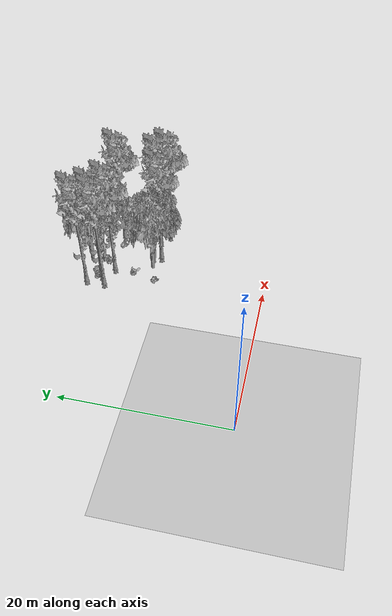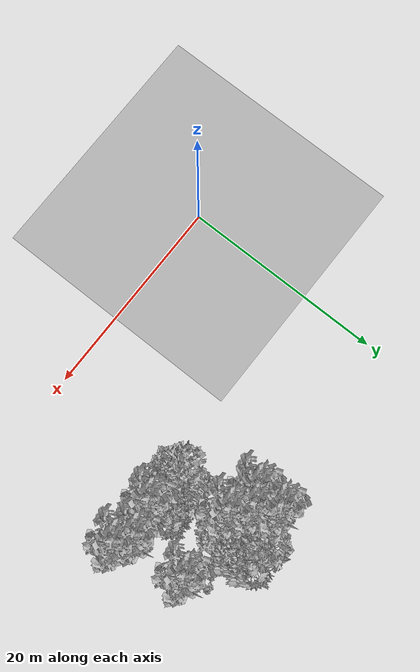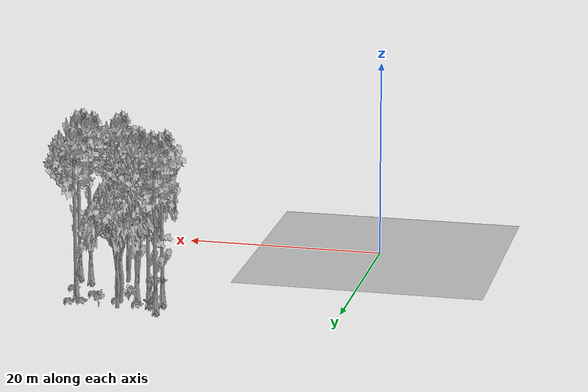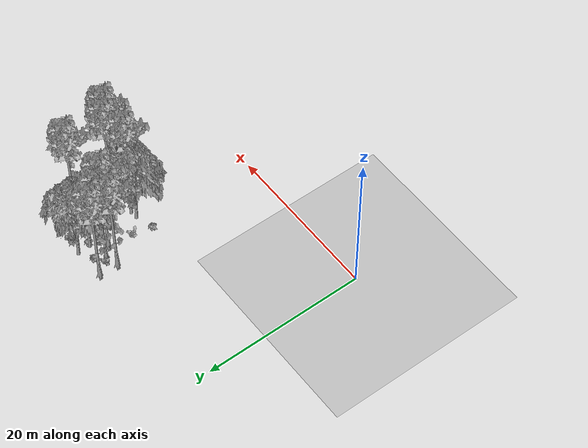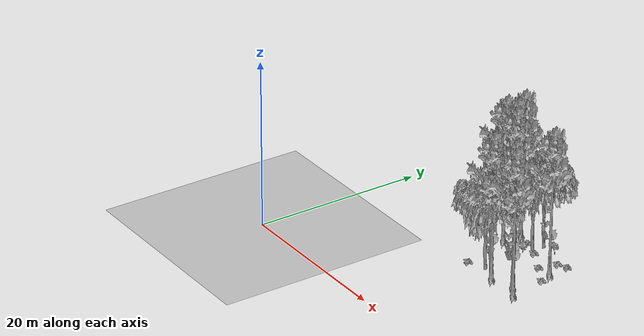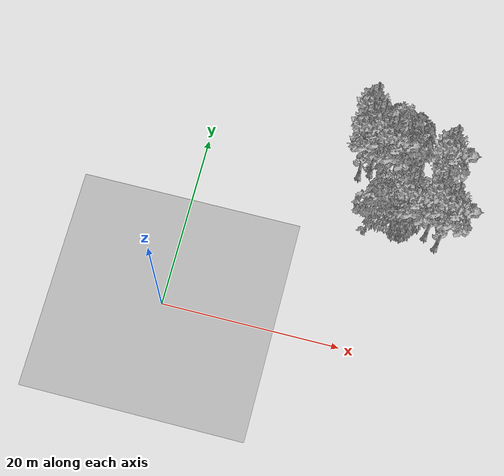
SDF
<sdf version="1.7">
 <world name="default">
  <model name="ground_plane">
   <static>1</static>
   <link name="link">
    <collision name="collision">
     <pose>-50 0 0 0 -0 0</pose>
     <geometry><plane><normal>0 0 1</normal><size>80 80</size></plane></geometry>
     <surface><contact><ode><min_depth>0.01</min_depth><max_vel>0</max_vel></ode></contact></surface>
    </collision>
    <visual name="grass">
     <cast_shadows>0</cast_shadows>
     <geometry>
      <mesh>
       <scale>0.46714285714285714 0.46714285714285714 0.1</scale>
       <uri>file://grass_plane/meshes/grass_plane.dae</uri>
      </mesh>
     </geometry>
    </visual>
   </link>
  </model>
  <model name="Tree 81">
   <static>1</static>
   <pose>27.825492274442666 13.792564507645409 0 1.57079 -0 0</pose>
   <link name="link">
    <collision name="collision">
     <geometry><mesh><scale>3.5 5 3.5</scale><uri>model://tree_9/meshes/tree_9.obj</uri></mesh></geometry>
    </collision>
    <visual name="visual">
     <geometry><mesh><scale>3.5 5 3.5</scale><uri>model://tree_9/meshes/tree_9.obj</uri></mesh></geometry>
    </visual>
   </link>
  </model>
  <model name="Tree 201">
   <static>1</static>
   <pose>17.6155362397091 19.97150024033938 0 1.57079 -0 0</pose>
   <link name="link">
    <collision name="collision">
     <geometry><mesh><scale>3.5 5 3.5</scale><uri>model://tree_9/meshes/tree_9.obj</uri></mesh></geometry>
    </collision>
    <visual name="visual">
     <geometry><mesh><scale>3.5 5 3.5</scale><uri>model://tree_9/meshes/tree_9.obj</uri></mesh></geometry>
    </visual>
   </link>
  </model>
  <model name="Tree 272">
   <static>1</static>
   <pose>21.31432841173236 22.63045035678634 0 1.57079 -0 0</pose>
   <link name="link">
    <collision name="collision">
     <geometry><mesh><scale>3.5 5 3.5</scale><uri>model://tree_2/meshes/tree_2.obj</uri></mesh></geometry>
    </collision>
    <visual name="visual">
     <geometry><mesh><scale>3.5 5 3.5</scale><uri>model://tree_2/meshes/tree_2.obj</uri></mesh></geometry>
    </visual>
   </link>
  </model>
  <model name="Tree 290">
   <static>1</static>
   <pose>26.43378960815322 19.694650475262705 0 1.57079 -0 0</pose>
   <link name="link">
    <collision name="collision">
     <geometry><mesh><scale>3.5 5 3.5</scale><uri>model://tree_9/meshes/tree_9.obj</uri></mesh></geometry>
    </collision>
    <visual name="visual">
     <geometry><mesh><scale>3.5 5 3.5</scale><uri>model://tree_9/meshes/tree_9.obj</uri></mesh></geometry>
    </visual>
   </link>
  </model>
  <model name="Tree 373">
   <static>1</static>
   <pose>21.5555188132942 14.602361237286644 0 1.57079 -0 0</pose>
   <link name="link">
    <collision name="collision">
     <geometry><mesh><scale>3.5 5 3.5</scale><uri>model://tree_2/meshes/tree_2.obj</uri></mesh></geometry>
    </collision>
    <visual name="visual">
     <geometry><mesh><scale>3.5 5 3.5</scale><uri>model://tree_2/meshes/tree_2.obj</uri></mesh></geometry>
    </visual>
   </link>
  </model>
  <model name="Tree 410">
   <static>1</static>
   <pose>20.381674593219856 19.325352890547705 0 1.57079 -0 0</pose>
   <link name="link">
    <collision name="collision">
     <geometry><mesh><scale>3.5 5 3.5</scale><uri>model://tree_9/meshes/tree_9.obj</uri></mesh></geometry>
    </collision>
    <visual name="visual">
     <geometry><mesh><scale>3.5 5 3.5</scale><uri>model://tree_9/meshes/tree_9.obj</uri></mesh></geometry>
    </visual>
   </link>
  </model>
  <model name="Tree 477">
   <static>1</static>
   <pose>17.670079113250267 22.307950847103292 0 1.57079 -0 0</pose>
   <link name="link">
    <collision name="collision">
     <geometry><mesh><scale>3.5 5 3.5</scale><uri>model://tree_9/meshes/tree_9.obj</uri></mesh></geometry>
    </collision>
    <visual name="visual">
     <geometry><mesh><scale>3.5 5 3.5</scale><uri>model://tree_9/meshes/tree_9.obj</uri></mesh></geometry>
    </visual>
   </link>
  </model>
  <model name="Tree 525">
   <static>1</static>
   <pose>23.6677606279358 13.97105103651262 0 1.57079 -0 0</pose>
   <link name="link">
    <collision name="collision">
     <geometry><mesh><scale>3.5 5 3.5</scale><uri>model://tree_9/meshes/tree_9.obj</uri></mesh></geometry>
    </collision>
    <visual name="visual">
     <geometry><mesh><scale>3.5 5 3.5</scale><uri>model://tree_9/meshes/tree_9.obj</uri></mesh></geometry>
    </visual>
   </link>
  </model>
  <model name="Tree 542">
   <static>1</static>
   <pose>18.820318354538294 20.622194371102992 0 1.57079 -0 0</pose>
   <link name="link">
    <collision name="collision">
     <geometry><mesh><scale>3.5 5 3.5</scale><uri>model://tree_9/meshes/tree_9.obj</uri></mesh></geometry>
    </collision>
    <visual name="visual">
     <geometry><mesh><scale>3.5 5 3.5</scale><uri>model://tree_9/meshes/tree_9.obj</uri></mesh></geometry>
    </visual>
   </link>
  </model>
  <model name="Tree 588">
   <static>1</static>
   <pose>21.416611418918663 21.045406055013515 0 1.57079 -0 0</pose>
   <link name="link">
    <collision name="collision">
     <geometry><mesh><scale>3.5 5 3.5</scale><uri>model://tree_2/meshes/tree_2.obj</uri></mesh></geometry>
    </collision>
    <visual name="visual">
     <geometry><mesh><scale>3.5 5 3.5</scale><uri>model://tree_2/meshes/tree_2.obj</uri></mesh></geometry>
    </visual>
   </link>
  </model>
  <model name="Tree 625">
   <static>1</static>
   <pose>26.43177708708076 14.741824622773237 0 1.57079 -0 0</pose>
   <link name="link">
    <collision name="collision">
     <geometry><mesh><scale>3.5 5 3.5</scale><uri>model://tree_9/meshes/tree_9.obj</uri></mesh></geometry>
    </collision>
    <visual name="visual">
     <geometry><mesh><scale>3.5 5 3.5</scale><uri>model://tree_9/meshes/tree_9.obj</uri></mesh></geometry>
    </visual>
   </link>
  </model>
  <model name="Tree 627">
   <static>1</static>
   <pose>22.482801090604028 14.682043763035153 0 1.57079 -0 0</pose>
   <link name="link">
    <collision name="collision">
     <geometry><mesh><scale>3.5 5 3.5</scale><uri>model://tree_2/meshes/tree_2.obj</uri></mesh></geometry>
    </collision>
    <visual name="visual">
     <geometry><mesh><scale>3.5 5 3.5</scale><uri>model://tree_2/meshes/tree_2.obj</uri></mesh></geometry>
    </visual>
   </link>
  </model>
  <model name="Bush 106">
   <static>1</static>
   <pose>19.439741978996942 13.864990455739544 0 1.57079 -0 0</pose>
   <link name="link">
    <collision name="collision">
     <geometry><mesh><scale>2 2 2</scale><uri>model://bush_2/meshes/bush_2.obj</uri></mesh></geometry>
     <surface><contact><collide_without_contact>false</collide_without_contact></contact></surface>
    </collision>
    <visual name="visual">
     <geometry><mesh><scale>2 2 2</scale><uri>model://bush_2/meshes/bush_2.obj</uri></mesh></geometry>
    </visual>
   </link>
  </model>
  <model name="Bush 157">
   <static>1</static>
   <pose>21.97171549794131 20.875434700968768 0 1.57079 -0 0</pose>
   <link name="link">
    <collision name="collision">
     <geometry><mesh><scale>2 2 2</scale><uri>model://bush_2/meshes/bush_2.obj</uri></mesh></geometry>
     <surface><contact><collide_without_contact>false</collide_without_contact></contact></surface>
    </collision>
    <visual name="visual">
     <geometry><mesh><scale>2 2 2</scale><uri>model://bush_2/meshes/bush_2.obj</uri></mesh></geometry>
    </visual>
   </link>
  </model>
  <model name="Bush 342">
   <static>1</static>
   <pose>27.24241700857273 17.97023509243143 0 1.57079 -0 0</pose>
   <link name="link">
    <collision name="collision">
     <geometry><mesh><scale>2 2 2</scale><uri>model://bush_2/meshes/bush_2.obj</uri></mesh></geometry>
     <surface><contact><collide_without_contact>false</collide_without_contact></contact></surface>
    </collision>
    <visual name="visual">
     <geometry><mesh><scale>2 2 2</scale><uri>model://bush_2/meshes/bush_2.obj</uri></mesh></geometry>
    </visual>
   </link>
  </model>
  <model name="Bush 450">
   <static>1</static>
   <pose>20.986924597037387 20.13322935036306 0 1.57079 -0 0</pose>
   <link name="link">
    <collision name="collision">
     <geometry><mesh><scale>2 2 2</scale><uri>model://bush_0/meshes/bush_0.obj</uri></mesh></geometry>
     <surface><contact><collide_without_contact>false</collide_without_contact></contact></surface>
    </collision>
    <visual name="visual">
     <geometry><mesh><scale>2 2 2</scale><uri>model://bush_0/meshes/bush_0.obj</uri></mesh></geometry>
    </visual>
   </link>
  </model>
  <model name="Bush 459">
   <static>1</static>
   <pose>23.28171528389631 22.75225874380402 0 1.57079 -0 0</pose>
   <link name="link">
    <collision name="collision">
     <geometry><mesh><scale>2 2 2</scale><uri>model://bush_5/meshes/bush_5.obj</uri></mesh></geometry>
     <surface><contact><collide_without_contact>false</collide_without_contact></contact></surface>
    </collision>
    <visual name="visual">
     <geometry><mesh><scale>2 2 2</scale><uri>model://bush_5/meshes/bush_5.obj</uri></mesh></geometry>
    </visual>
   </link>
  </model>
  <model name="Bush 496">
   <static>1</static>
   <pose>25.34825099550882 21.54462207225653 0 1.57079 -0 0</pose>
   <link name="link">
    <collision name="collision">
     <geometry><mesh><scale>2 2 2</scale><uri>model://bush_2/meshes/bush_2.obj</uri></mesh></geometry>
     <surface><contact><collide_without_contact>false</collide_without_contact></contact></surface>
    </collision>
    <visual name="visual">
     <geometry><mesh><scale>2 2 2</scale><uri>model://bush_2/meshes/bush_2.obj</uri></mesh></geometry>
    </visual>
   </link>
  </model>
  <model name="Bush 517">
   <static>1</static>
   <pose>19.679255681739484 16.572849008065738 0 1.57079 -0 0</pose>
   <link name="link">
    <collision name="collision">
     <geometry><mesh><scale>2 2 2</scale><uri>model://bush_0/meshes/bush_0.obj</uri></mesh></geometry>
     <surface><contact><collide_without_contact>false</collide_without_contact></contact></surface>
    </collision>
    <visual name="visual">
     <geometry><mesh><scale>2 2 2</scale><uri>model://bush_0/meshes/bush_0.obj</uri></mesh></geometry>
    </visual>
   </link>
  </model>
  <model name="Bush 597">
   <static>1</static>
   <pose>24.77736339730844 19.389154055066584 0 1.57079 -0 0</pose>
   <link name="link">
    <collision name="collision">
     <geometry><mesh><scale>2 2 2</scale><uri>model://bush_2/meshes/bush_2.obj</uri></mesh></geometry>
     <surface><contact><collide_without_contact>false</collide_without_contact></contact></surface>
    </collision>
    <visual name="visual">
     <geometry><mesh><scale>2 2 2</scale><uri>model://bush_2/meshes/bush_2.obj</uri></mesh></geometry>
    </visual>
   </link>
  </model>
  <model name="Bush 602">
   <static>1</static>
   <pose>26.472821916353354 21.964467122951973 0 1.57079 -0 0</pose>
   <link name="link">
    <collision name="collision">
     <geometry><mesh><scale>2 2 2</scale><uri>model://bush_2/meshes/bush_2.obj</uri></mesh></geometry>
     <surface><contact><collide_without_contact>false</collide_without_contact></contact></surface>
    </collision>
    <visual name="visual">
     <geometry><mesh><scale>2 2 2</scale><uri>model://bush_2/meshes/bush_2.obj</uri></mesh></geometry>
    </visual>
   </link>
  </model>
  <model name="Bush 614">
   <static>1</static>
   <pose>18.41866109574385 20.950806383022957 0 1.57079 -0 0</pose>
   <link name="link">
    <collision name="collision">
     <geometry><mesh><scale>2 2 2</scale><uri>model://bush_4/meshes/bush_4.obj</uri></mesh></geometry>
     <surface><contact><collide_without_contact>false</collide_without_contact></contact></surface>
    </collision>
    <visual name="visual">
     <geometry><mesh><scale>2 2 2</scale><uri>model://bush_4/meshes/bush_4.obj</uri></mesh></geometry>
    </visual>
   </link>
  </model>
  <model name="Bush 635">
   <static>1</static>
   <pose>19.75762371251497 21.595145093255475 0 1.57079 -0 0</pose>
   <link name="link">
    <collision name="collision">
     <geometry><mesh><scale>2 2 2</scale><uri>model://bush_2/meshes/bush_2.obj</uri></mesh></geometry>
     <surface><contact><collide_without_contact>false</collide_without_contact></contact></surface>
    </collision>
    <visual name="visual">
     <geometry><mesh><scale>2 2 2</scale><uri>model://bush_2/meshes/bush_2.obj</uri></mesh></geometry>
    </visual>
   </link>
  </model>
 </world>
</sdf>
